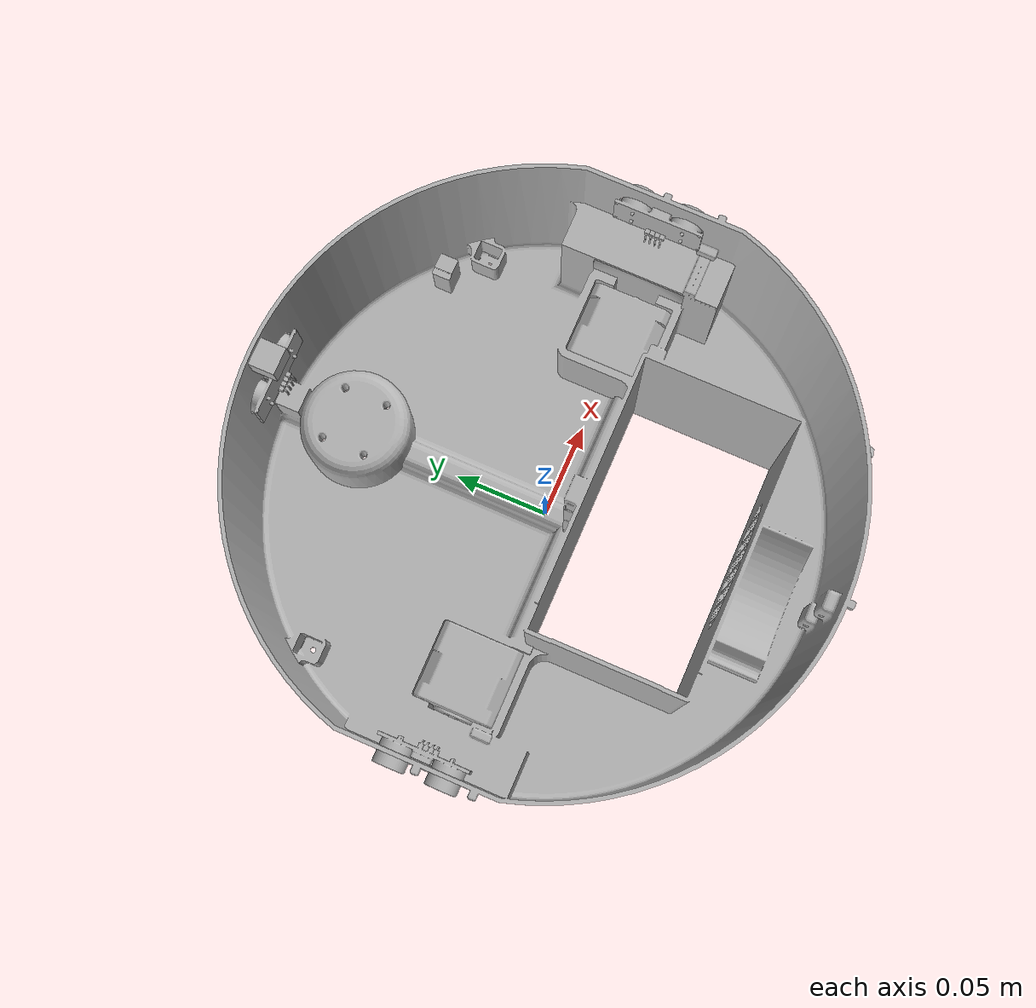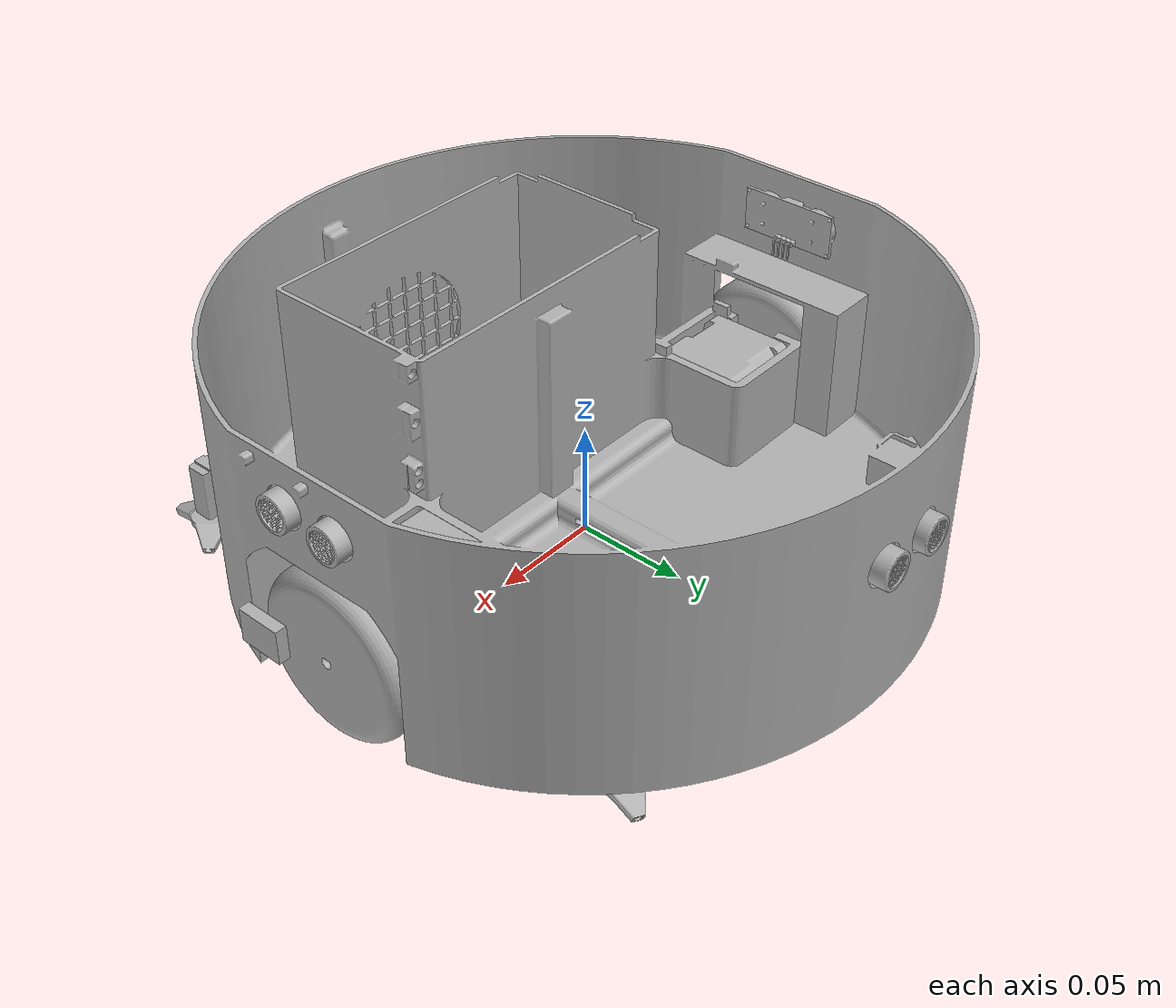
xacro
<?xml version="1.0" ?>
<robot name="ppp" xmlns:xacro="http://www.ros.org/wiki/xacro">

<xacro:include filename="$(find ppp_description)/urdf/materials.xacro" />
<xacro:include filename="$(find ppp_description)/urdf/ppp.trans" />
<xacro:include filename="$(find ppp_description)/urdf/ppp.gazebo" />
<link name="base_link">
  <inertial>
    <origin rpy="0 0 0" xyz="1.5201671826907086e-05 -0.0012107786655712151 0.03300924453524418"/>
    <mass value="4.737374361291242"/>
    <inertia ixx="0.040333" ixy="-5e-06" ixz="-1e-05" iyy="0.036454" iyz="0.001185" izz="0.066412"/>
  </inertial>
  <visual>
    <origin rpy="0 0 0" xyz="0 0 0"/>
    <geometry>
      <mesh filename="package://ppp_description/meshes/base_link.stl" scale="0.001 0.001 0.001"/>
    </geometry>
    <material name="silver"/>
  </visual>
  <collision>
    <origin rpy="0 0 0" xyz="0 0 0"/>
    <geometry>
      <mesh filename="package://ppp_description/meshes/base_link.stl" scale="0.001 0.001 0.001"/>
    </geometry>
  </collision>
</link>

<link name="wheel_1">
  <inertial>
    <origin rpy="0 0 0" xyz="-0.01199971693767804 6.38590668516137e-05 -0.0002917507270338848"/>
    <mass value="0.7647072407364309"/>
    <inertia ixx="0.000502" ixy="0.0" ixz="0.0" iyy="0.000285" iyz="-0.0" izz="0.000285"/>
  </inertial>
  <visual>
    <origin rpy="0 0 0" xyz="-0.144259 -0.0 -0.024125"/>
    <geometry>
      <mesh filename="package://ppp_description/meshes/wheel_1.stl" scale="0.001 0.001 0.001"/>
    </geometry>
    <material name="silver"/>
  </visual>
  <collision>
    <origin rpy="0 0 0" xyz="-0.144259 -0.0 -0.024125"/>
    <geometry>
      <mesh filename="package://ppp_description/meshes/wheel_1.stl" scale="0.001 0.001 0.001"/>
    </geometry>
  </collision>
</link>

<link name="wheel_Mirror__1">
  <inertial>
    <origin rpy="0 0 0" xyz="-0.011999769370161381 -0.00015102030089534307 0.00026807201904404526"/>
    <mass value="0.7647072407364308"/>
    <inertia ixx="0.000502" ixy="0.0" ixz="0.0" iyy="0.000285" iyz="-0.0" izz="0.000285"/>
  </inertial>
  <visual>
    <origin rpy="0 0 0" xyz="0.12185 3e-06 -0.024125"/>
    <geometry>
      <mesh filename="package://ppp_description/meshes/wheel_Mirror__1.stl" scale="0.001 0.001 0.001"/>
    </geometry>
    <material name="silver"/>
  </visual>
  <collision>
    <origin rpy="0 0 0" xyz="0.12185 3e-06 -0.024125"/>
    <geometry>
      <mesh filename="package://ppp_description/meshes/wheel_Mirror__1.stl" scale="0.001 0.001 0.001"/>
    </geometry>
  </collision>
</link>

<link name="sonyc_1">
  <inertial>
    <origin rpy="0 0 0" xyz="-0.010235420309224613 -0.012999995558067955 5.063181308696818e-05"/>
    <mass value="0.0252883585593009"/>
    <inertia ixx="5e-06" ixy="-0.0" ixz="-0.0" iyy="1e-06" iyz="-0.0" izz="5e-06"/>
  </inertial>
  <visual>
    <origin rpy="0 0 0" xyz="-0.150568 -0.013 -0.08983"/>
    <geometry>
      <mesh filename="package://ppp_description/meshes/sonyc_1.stl" scale="0.001 0.001 0.001"/>
    </geometry>
    <material name="silver"/>
  </visual>
  <collision>
    <origin rpy="0 0 0" xyz="-0.150568 -0.013 -0.08983"/>
    <geometry>
      <mesh filename="package://ppp_description/meshes/sonyc_1.stl" scale="0.001 0.001 0.001"/>
    </geometry>
  </collision>
</link>

<link name="sonyc_Mirror__1">
  <inertial>
    <origin rpy="0 0 0" xyz="0.010235420309224252 0.01300000444193195 5.063181308696818e-05"/>
    <mass value="0.025288358559300887"/>
    <inertia ixx="5e-06" ixy="0.0" ixz="0.0" iyy="1e-06" iyz="-0.0" izz="5e-06"/>
  </inertial>
  <visual>
    <origin rpy="0 0 0" xyz="0.150568 0.013 -0.08983"/>
    <geometry>
      <mesh filename="package://ppp_description/meshes/sonyc_Mirror__1.stl" scale="0.001 0.001 0.001"/>
    </geometry>
    <material name="silver"/>
  </visual>
  <collision>
    <origin rpy="0 0 0" xyz="0.150568 0.013 -0.08983"/>
    <geometry>
      <mesh filename="package://ppp_description/meshes/sonyc_Mirror__1.stl" scale="0.001 0.001 0.001"/>
    </geometry>
  </collision>
</link>

<link name="sonyc__1__1">
  <inertial>
    <origin rpy="0 0 0" xyz="-0.01300032439616085 -0.010236078078188549 5.06318130869543e-05"/>
    <mass value="0.0252883585593009"/>
    <inertia ixx="1e-06" ixy="0.0" ixz="0.0" iyy="5e-06" iyz="-0.0" izz="5e-06"/>
  </inertial>
  <visual>
    <origin rpy="0 0 0" xyz="-0.012977 -0.154921 -0.06983"/>
    <geometry>
      <mesh filename="package://ppp_description/meshes/sonyc__1__1.stl" scale="0.001 0.001 0.001"/>
    </geometry>
    <material name="silver"/>
  </visual>
  <collision>
    <origin rpy="0 0 0" xyz="-0.012977 -0.154921 -0.06983"/>
    <geometry>
      <mesh filename="package://ppp_description/meshes/sonyc__1__1.stl" scale="0.001 0.001 0.001"/>
    </geometry>
  </collision>
</link>

<link name="nema17_1">
  <inertial>
    <origin rpy="0 0 0" xyz="-0.003342487143977363 1.0409113986613717e-06 0.02118013525930302"/>
    <mass value="0.1838412954712099"/>
    <inertia ixx="5.3e-05" ixy="0.0" ixz="0.0" iyy="5.2e-05" iyz="0.0" izz="5.2e-05"/>
  </inertial>
  <visual>
    <origin rpy="0 0 0" xyz="-0.098409 -0.0 -0.003"/>
    <geometry>
      <mesh filename="package://ppp_description/meshes/nema17_1.stl" scale="0.001 0.001 0.001"/>
    </geometry>
    <material name="silver"/>
  </visual>
  <collision>
    <origin rpy="0 0 0" xyz="-0.098409 -0.0 -0.003"/>
    <geometry>
      <mesh filename="package://ppp_description/meshes/nema17_1.stl" scale="0.001 0.001 0.001"/>
    </geometry>
  </collision>
</link>

<link name="nema17_Mirror__1">
  <inertial>
    <origin rpy="0 0 0" xyz="0.0033427367952116732 6.3450027137950304e-06 0.021180135259303026"/>
    <mass value="0.1838412954712099"/>
    <inertia ixx="5.3e-05" ixy="0.0" ixz="-0.0" iyy="5.2e-05" iyz="0.0" izz="5.2e-05"/>
  </inertial>
  <visual>
    <origin rpy="0 0 0" xyz="0.099 -3.4e-05 -0.003"/>
    <geometry>
      <mesh filename="package://ppp_description/meshes/nema17_Mirror__1.stl" scale="0.001 0.001 0.001"/>
    </geometry>
    <material name="silver"/>
  </visual>
  <collision>
    <origin rpy="0 0 0" xyz="0.099 -3.4e-05 -0.003"/>
    <geometry>
      <mesh filename="package://ppp_description/meshes/nema17_Mirror__1.stl" scale="0.001 0.001 0.001"/>
    </geometry>
  </collision>
</link>

<link name="12GAN20__1__1">
  <inertial>
    <origin rpy="0 0 0" xyz="-3.292631452073147e-06 -6.626992531399978e-07 0.01185787133707267"/>
    <mass value="0.023492103087793172"/>
    <inertia ixx="2e-06" ixy="0.0" ixz="-0.0" iyy="1e-06" iyz="0.0" izz="0.0"/>
  </inertial>
  <visual>
    <origin rpy="0 0 0" xyz="0.113402 -0.08196 -0.001"/>
    <geometry>
      <mesh filename="package://ppp_description/meshes/12GAN20__1__1.stl" scale="0.001 0.001 0.001"/>
    </geometry>
    <material name="silver"/>
  </visual>
  <collision>
    <origin rpy="0 0 0" xyz="0.113402 -0.08196 -0.001"/>
    <geometry>
      <mesh filename="package://ppp_description/meshes/12GAN20__1__1.stl" scale="0.001 0.001 0.001"/>
    </geometry>
  </collision>
</link>

<link name="brush_1">
  <inertial>
    <origin rpy="0 0 0" xyz="-7.733309837359981e-07 3.2946715564086126e-08 -0.0022204199308318265"/>
    <mass value="0.014937067448072668"/>
    <inertia ixx="1e-06" ixy="-0.0" ixz="0.0" iyy="1e-06" iyz="-0.0" izz="2e-06"/>
  </inertial>
  <visual>
    <origin rpy="0 0 0" xyz="0.113412 -0.081962 0.001"/>
    <geometry>
      <mesh filename="package://ppp_description/meshes/brush_1.stl" scale="0.001 0.001 0.001"/>
    </geometry>
    <material name="silver"/>
  </visual>
  <collision>
    <origin rpy="0 0 0" xyz="0.113412 -0.081962 0.001"/>
    <geometry>
      <mesh filename="package://ppp_description/meshes/brush_1.stl" scale="0.001 0.001 0.001"/>
    </geometry>
  </collision>
</link>

<link name="brush_Mirror__1">
  <inertial>
    <origin rpy="0 0 0" xyz="-5.614420229005379e-07 -1.2298749614975124e-06 -0.0022204199308317844"/>
    <mass value="0.014937067448072664"/>
    <inertia ixx="1e-06" ixy="-0.0" ixz="0.0" iyy="1e-06" iyz="0.0" izz="2e-06"/>
  </inertial>
  <visual>
    <origin rpy="0 0 0" xyz="-0.113393 -0.081958 0.001"/>
    <geometry>
      <mesh filename="package://ppp_description/meshes/brush_Mirror__1.stl" scale="0.001 0.001 0.001"/>
    </geometry>
    <material name="silver"/>
  </visual>
  <collision>
    <origin rpy="0 0 0" xyz="-0.113393 -0.081958 0.001"/>
    <geometry>
      <mesh filename="package://ppp_description/meshes/brush_Mirror__1.stl" scale="0.001 0.001 0.001"/>
    </geometry>
  </collision>
</link>

<link name="12GAN20__1__Mirror__1">
  <inertial>
    <origin rpy="0 0 0" xyz="-7.3554193489588915e-06 -2.6912147267910136e-06 0.011857871337072678"/>
    <mass value="0.02349210308779317"/>
    <inertia ixx="2e-06" ixy="-0.0" ixz="0.0" iyy="1e-06" iyz="0.0" izz="0.0"/>
  </inertial>
  <visual>
    <origin rpy="0 0 0" xyz="-0.113393 -0.081958 -0.001"/>
    <geometry>
      <mesh filename="package://ppp_description/meshes/12GAN20__1__Mirror__1.stl" scale="0.001 0.001 0.001"/>
    </geometry>
    <material name="silver"/>
  </visual>
  <collision>
    <origin rpy="0 0 0" xyz="-0.113393 -0.081958 -0.001"/>
    <geometry>
      <mesh filename="package://ppp_description/meshes/12GAN20__1__Mirror__1.stl" scale="0.001 0.001 0.001"/>
    </geometry>
  </collision>
</link>

<link name="FW_baise_1">
  <inertial>
    <origin rpy="0 0 0" xyz="0.014149999999964021 -0.011650110353972745 -0.0014374507094137914"/>
    <mass value="0.0061871055650105375"/>
    <inertia ixx="0.0" ixy="0.0" ixz="-0.0" iyy="0.0" iyz="-0.0" izz="1e-06"/>
  </inertial>
  <visual>
    <origin rpy="0 0 0" xyz="0.014 -0.117931 -0.022"/>
    <geometry>
      <mesh filename="package://ppp_description/meshes/FW_baise_1.stl" scale="0.001 0.001 0.001"/>
    </geometry>
    <material name="silver"/>
  </visual>
  <collision>
    <origin rpy="0 0 0" xyz="0.014 -0.117931 -0.022"/>
    <geometry>
      <mesh filename="package://ppp_description/meshes/FW_baise_1.stl" scale="0.001 0.001 0.001"/>
    </geometry>
  </collision>
</link>

<link name="wheel__1__1">
  <inertial>
    <origin rpy="0 0 0" xyz="1.872807464664561e-14 -1.1035397273762015e-07 4.466912950640278e-17"/>
    <mass value="0.0030771108424005812"/>
    <inertia ixx="0.0" ixy="0.0" ixz="-0.0" iyy="0.0" iyz="-0.0" izz="0.0"/>
  </inertial>
  <visual>
    <origin rpy="0 0 0" xyz="-0.00815 -0.106281 -0.0004"/>
    <geometry>
      <mesh filename="package://ppp_description/meshes/wheel__1__1.stl" scale="0.001 0.001 0.001"/>
    </geometry>
    <material name="silver"/>
  </visual>
  <collision>
    <origin rpy="0 0 0" xyz="-0.00815 -0.106281 -0.0004"/>
    <geometry>
      <mesh filename="package://ppp_description/meshes/wheel__1__1.stl" scale="0.001 0.001 0.001"/>
    </geometry>
  </collision>
</link>

<link name="axis_1">
  <inertial>
    <origin rpy="0 0 0" xyz="0.03303899999968629 -1.1035397272374237e-07 -0.035509999999999944"/>
    <mass value="0.0043107049436968805"/>
    <inertia ixx="0.0" ixy="0.0" ixz="0.0" iyy="0.0" iyz="0.0" izz="0.0"/>
  </inertial>
  <visual>
    <origin rpy="0 0 0" xyz="0.024889 -0.106281 -0.03591"/>
    <geometry>
      <mesh filename="package://ppp_description/meshes/axis_1.stl" scale="0.001 0.001 0.001"/>
    </geometry>
    <material name="silver"/>
  </visual>
  <collision>
    <origin rpy="0 0 0" xyz="0.024889 -0.106281 -0.03591"/>
    <geometry>
      <mesh filename="package://ppp_description/meshes/axis_1.stl" scale="0.001 0.001 0.001"/>
    </geometry>
  </collision>
</link>

<link name="holder_1">
  <inertial>
    <origin rpy="0 0 0" xyz="0.0011550098836461376 -3.867842181329295e-06 -0.0024145150891157104"/>
    <mass value="0.006489971019909515"/>
    <inertia ixx="1e-06" ixy="-0.0" ixz="0.0" iyy="0.0" iyz="-0.0" izz="1e-06"/>
  </inertial>
  <visual>
    <origin rpy="0 0 0" xyz="-0.00015 -0.106281 -0.0145"/>
    <geometry>
      <mesh filename="package://ppp_description/meshes/holder_1.stl" scale="0.001 0.001 0.001"/>
    </geometry>
    <material name="silver"/>
  </visual>
  <collision>
    <origin rpy="0 0 0" xyz="-0.00015 -0.106281 -0.0145"/>
    <geometry>
      <mesh filename="package://ppp_description/meshes/holder_1.stl" scale="0.001 0.001 0.001"/>
    </geometry>
  </collision>
</link>

<link name="axis_main_1">
  <inertial>
    <origin rpy="0 0 0" xyz="4.181978385548596e-13 -1.1035397275149794e-07 -0.003749999999999993"/>
    <mass value="0.003193114773108801"/>
    <inertia ixx="0.0" ixy="-0.0" ixz="-0.0" iyy="0.0" iyz="-0.0" izz="0.0"/>
  </inertial>
  <visual>
    <origin rpy="0 0 0" xyz="-0.00015 -0.106281 -0.022"/>
    <geometry>
      <mesh filename="package://ppp_description/meshes/axis_main_1.stl" scale="0.001 0.001 0.001"/>
    </geometry>
    <material name="silver"/>
  </visual>
  <collision>
    <origin rpy="0 0 0" xyz="-0.00015 -0.106281 -0.022"/>
    <geometry>
      <mesh filename="package://ppp_description/meshes/axis_main_1.stl" scale="0.001 0.001 0.001"/>
    </geometry>
  </collision>
</link>

<link name="IMU_1">
  <inertial>
    <origin rpy="0 0 0" xyz="2.3440450969136606e-16 4.815371235089572e-07 0.008500000000000056"/>
    <mass value="0.014012250000000002"/>
    <inertia ixx="0.0" ixy="-0.0" ixz="-0.0" iyy="1e-06" iyz="0.0" izz="1e-06"/>
  </inertial>
  <visual>
    <origin rpy="0 0 0" xyz="0.001 -0.14314 -0.033"/>
    <geometry>
      <mesh filename="package://ppp_description/meshes/IMU_1.stl" scale="0.001 0.001 0.001"/>
    </geometry>
    <material name="silver"/>
  </visual>
  <collision>
    <origin rpy="0 0 0" xyz="0.001 -0.14314 -0.033"/>
    <geometry>
      <mesh filename="package://ppp_description/meshes/IMU_1.stl" scale="0.001 0.001 0.001"/>
    </geometry>
  </collision>
</link>

<joint name="Rev1" type="continuous">
  <origin rpy="0 0 0" xyz="0.04585 0.0 0.021125"/>
  <parent link="nema17_1"/>
  <child link="wheel_1"/>
  <axis xyz="1.0 0.0 -0.0"/>
</joint>

<joint name="Rev4" type="continuous">
  <origin rpy="0 0 0" xyz="-0.02285 -3.7e-05 0.021125"/>
  <parent link="nema17_Mirror__1"/>
  <child link="wheel_Mirror__1"/>
  <axis xyz="-0.999999 -0.001615 0.0"/>
</joint>

<joint name="Rigid5" type="fixed">
  <origin rpy="0 0 0" xyz="0.150568 0.013 0.08983"/>
  <parent link="base_link"/>
  <child link="sonyc_1"/>
</joint>

<joint name="Rigid6" type="fixed">
  <origin rpy="0 0 0" xyz="-0.150568 -0.013 0.08983"/>
  <parent link="base_link"/>
  <child link="sonyc_Mirror__1"/>
</joint>

<joint name="Rigid7" type="fixed">
  <origin rpy="0 0 0" xyz="0.012977 0.154921 0.06983"/>
  <parent link="base_link"/>
  <child link="sonyc__1__1"/>
</joint>

<joint name="Rigid8" type="fixed">
  <origin rpy="0 0 0" xyz="0.098409 0.0 0.003"/>
  <parent link="base_link"/>
  <child link="nema17_1"/>
</joint>

<joint name="Rigid9" type="fixed">
  <origin rpy="0 0 0" xyz="-0.099 3.4e-05 0.003"/>
  <parent link="base_link"/>
  <child link="nema17_Mirror__1"/>
</joint>

<joint name="Rigid13" type="fixed">
  <origin rpy="0 0 0" xyz="-0.113402 0.08196 0.001"/>
  <parent link="base_link"/>
  <child link="12GAN20__1__1"/>
</joint>

<joint name="Rev14" type="continuous">
  <origin rpy="0 0 0" xyz="-1e-05 2e-06 -0.002"/>
  <parent link="12GAN20__1__1"/>
  <child link="brush_1"/>
  <axis xyz="0.0 -0.0 -1.0"/>
</joint>

<joint name="Rev15" type="continuous">
  <origin rpy="0 0 0" xyz="0.0 0.0 -0.002"/>
  <parent link="12GAN20__1__Mirror__1"/>
  <child link="brush_Mirror__1"/>
  <axis xyz="-0.0 -0.0 -1.0"/>
</joint>

<joint name="Rigid16" type="fixed">
  <origin rpy="0 0 0" xyz="0.113393 0.081958 0.001"/>
  <parent link="base_link"/>
  <child link="12GAN20__1__Mirror__1"/>
</joint>

<joint name="Rigid22" type="fixed">
  <origin rpy="0 0 0" xyz="-0.014 0.117931 0.022"/>
  <parent link="base_link"/>
  <child link="FW_baise_1"/>
</joint>

<joint name="Rev26" type="continuous">
  <origin rpy="0 0 0" xyz="0.033039 0.0 -0.03551"/>
  <parent link="axis_1"/>
  <child link="wheel__1__1"/>
  <axis xyz="-0.0 -1.0 -0.0"/>
</joint>

<joint name="Rev27" type="continuous">
  <origin rpy="0 0 0" xyz="-0.025039 0.0 0.02141"/>
  <parent link="holder_1"/>
  <child link="axis_1"/>
  <axis xyz="0.0 1.0 0.0"/>
</joint>

<joint name="Rev28" type="continuous">
  <origin rpy="0 0 0" xyz="0.0 0.0 -0.0075"/>
  <parent link="axis_main_1"/>
  <child link="holder_1"/>
  <axis xyz="-0.0 0.0 -1.0"/>
</joint>

<joint name="Rev29" type="continuous">
  <origin rpy="0 0 0" xyz="0.01415 -0.01165 0.0"/>
  <parent link="FW_baise_1"/>
  <child link="axis_main_1"/>
  <axis xyz="0.0 -0.0 -1.0"/>
</joint>

<joint name="IMU_TO_MAIN" type="fixed">
  <origin rpy="0 0 0" xyz="-0.001 0.14314 0.033"/>
  <parent link="base_link"/>
  <child link="IMU_1"/>
</joint>

</robot>

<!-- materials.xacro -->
<robot name="ppp" xmlns:xacro="http://www.ros.org/wiki/xacro" >

<material name="silver">
  <color rgba="0.700 0.700 0.700 1.000"/>
</material>

</robot>

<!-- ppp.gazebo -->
<robot name="ppp" xmlns:xacro="http://www.ros.org/wiki/xacro" >

<xacro:property name="body_color" value="Gazebo/Silver" />

<gazebo>
  <plugin filename="libgazebo_ros_control.so" name="control"/>
</gazebo>
<gazebo reference="base_link">
  <material>${body_color}</material>
  <mu1>0.2</mu1>
  <mu2>0.2</mu2>
  <selfCollide>true</selfCollide>
  <gravity>true</gravity>
</gazebo>

<gazebo reference="wheel_1">
  <material>${body_color}</material>
  <mu1>0.2</mu1>
  <mu2>0.2</mu2>
  <selfCollide>true</selfCollide>
</gazebo>

<gazebo reference="wheel_Mirror__1">
  <material>${body_color}</material>
  <mu1>0.2</mu1>
  <mu2>0.2</mu2>
  <selfCollide>true</selfCollide>
  <selfCollide>true</selfCollide>
    <sensor type="ray" name="TeraRanger1">
      <pose>0 0 0 0 0 0</pose>
      <visualize>true</visualize>
      <update_rate>50</update_rate>
      <ray>
         <scan>
            <horizontal>
               <samples>10</samples>
               <resolution>1</resolution>
               <min_angle>-0.14835</min_angle>
               <max_angle>0.14835</max_angle>
            </horizontal>
            <vertical>
               <samples>10</samples>
               <resolution>1</resolution>
               <min_angle>-0.14835</min_angle>
               <max_angle>0.14835</max_angle>
            </vertical>
         </scan>
         <range>
            <min>0.01</min>
            <max>2</max>
            <resolution>0.02</resolution>
         </range>
      </ray>
      <plugin filename="libgazebo_ros_range.so" name="gazebo_ros_range">
         <gaussianNoise>0.005</gaussianNoise>
         <alwaysOn>true</alwaysOn>
         <updateRate>50</updateRate>
         <topicName>sensor/ir_front</topicName>
         <frameName>wheel_Mirror__1</frameName>
         <radiation>INFRARED</radiation>
         <fov>0.2967</fov>
      </plugin>
   </sensor>
</gazebo>

<gazebo reference="sonyc_1">
  <material>${body_color}</material>
  <mu1>0.2</mu1>
  <mu2>0.2</mu2>
  <selfCollide>true</selfCollide>
</gazebo>

<gazebo reference="sonyc_Mirror__1">
  <material>${body_color}</material>
  <mu1>0.2</mu1>
  <mu2>0.2</mu2>
  <selfCollide>true</selfCollide>
  <selfCollide>true</selfCollide>
    <sensor type="ray" name="TeraRanger1">
      <pose>0 0 0 0 0 0</pose>
      <visualize>true</visualize>
      <update_rate>50</update_rate>
      <ray>
         <scan>
            <horizontal>
               <samples>10</samples>
               <resolution>1</resolution>
               <min_angle>-0.14835</min_angle>
               <max_angle>0.14835</max_angle>
            </horizontal>
            <vertical>
               <samples>10</samples>
               <resolution>1</resolution>
               <min_angle>-0.14835</min_angle>
               <max_angle>0.14835</max_angle>
            </vertical>
         </scan>
         <range>
            <min>0.01</min>
            <max>2</max>
            <resolution>0.02</resolution>
         </range>
      </ray>
      <plugin filename="libgazebo_ros_range.so" name="gazebo_ros_range">
         <gaussianNoise>0.005</gaussianNoise>
         <alwaysOn>true</alwaysOn>
         <updateRate>50</updateRate>
         <topicName>sensor/ir_front</topicName>
         <frameName>sonyc_1</frameName>
         <radiation>INFRARED</radiation>
         <fov>0.2967</fov>
      </plugin>
   </sensor>
</gazebo>

<gazebo reference="sonyc__1__1">
  <material>${body_color}</material>
  <mu1>0.2</mu1>
  <mu2>0.2</mu2>
  <selfCollide>true</selfCollide>
  <selfCollide>true</selfCollide>
    <sensor type="ray" name="TeraRanger1">
      <pose>0 0 0 0 0 0</pose>
      <visualize>true</visualize>
      <update_rate>50</update_rate>
      <ray>
         <scan>
            <horizontal>
               <samples>10</samples>
               <resolution>1</resolution>
               <min_angle>-0.14835</min_angle>
               <max_angle>0.14835</max_angle>
            </horizontal>
            <vertical>
               <samples>10</samples>
               <resolution>1</resolution>
               <min_angle>-0.14835</min_angle>
               <max_angle>0.14835</max_angle>
            </vertical>
         </scan>
         <range>
            <min>0.01</min>
            <max>2</max>
            <resolution>0.02</resolution>
         </range>
      </ray>
      <plugin filename="libgazebo_ros_range.so" name="gazebo_ros_range">
         <gaussianNoise>0.005</gaussianNoise>
         <alwaysOn>true</alwaysOn>
         <updateRate>50</updateRate>
         <topicName>sensor/ir_front</topicName>
         <frameName>sonyc__1__1</frameName>
         <radiation>INFRARED</radiation>
         <fov>0.2967</fov>
      </plugin>
   </sensor>
</gazebo>

<gazebo reference="nema17_1">
  <material>${body_color}</material>
  <mu1>0.2</mu1>
  <mu2>0.2</mu2>
  <selfCollide>true</selfCollide>
</gazebo>

<gazebo reference="nema17_Mirror__1">
  <material>${body_color}</material>
  <mu1>0.2</mu1>
  <mu2>0.2</mu2>
  <selfCollide>true</selfCollide>
</gazebo>

<gazebo reference="12GAN20__1__1">
  <material>${body_color}</material>
  <mu1>0.2</mu1>
  <mu2>0.2</mu2>
  <selfCollide>true</selfCollide>
</gazebo>

<gazebo reference="brush_1">
  <material>${body_color}</material>
  <mu1>0.2</mu1>
  <mu2>0.2</mu2>
  <selfCollide>true</selfCollide>
</gazebo>

<gazebo reference="brush_Mirror__1">
  <material>${body_color}</material>
  <mu1>0.2</mu1>
  <mu2>0.2</mu2>
  <selfCollide>true</selfCollide>
</gazebo>

<gazebo reference="12GAN20__1__Mirror__1">
  <material>${body_color}</material>
  <mu1>0.2</mu1>
  <mu2>0.2</mu2>
  <selfCollide>true</selfCollide>
</gazebo>

<gazebo reference="FW_baise_1">
  <material>${body_color}</material>
  <mu1>0.2</mu1>
  <mu2>0.2</mu2>
  <selfCollide>true</selfCollide>
</gazebo>

<gazebo reference="wheel__1__1">
  <material>${body_color}</material>
  <mu1>0.2</mu1>
  <mu2>0.2</mu2>
  <selfCollide>true</selfCollide>
</gazebo>

<gazebo reference="axis_1">
  <material>${body_color}</material>
  <mu1>0.2</mu1>
  <mu2>0.2</mu2>
  <selfCollide>true</selfCollide>
</gazebo>

<gazebo reference="holder_1">
  <material>${body_color}</material>
  <mu1>0.2</mu1>
  <mu2>0.2</mu2>
  <selfCollide>true</selfCollide>
</gazebo>

<gazebo reference="axis_main_1">
  <material>${body_color}</material>
  <mu1>0.2</mu1>
  <mu2>0.2</mu2>
  <selfCollide>true</selfCollide>
</gazebo>

<gazebo reference="IMU_1">
  <material>${body_color}</material>
  <mu1>0.2</mu1>
  <mu2>0.2</mu2>
  <selfCollide>true</selfCollide>
</gazebo>

</robot>
